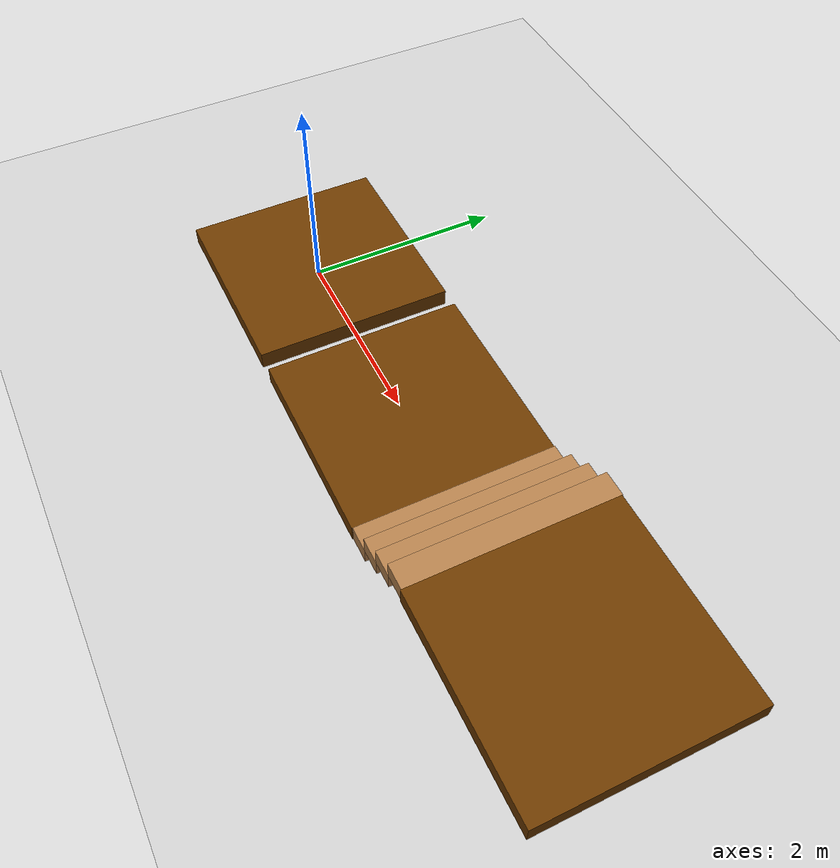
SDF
<?xml version="1.0" ?>
<sdf version="1.5">
    <world name="default">

        <physics type="ode">
        <max_step_size>0.001</max_step_size>
        <real_time_factor>1</real_time_factor>
        <real_time_update_rate>1000</real_time_update_rate>
        <gravity>0 0 -9.81</gravity>
            <ode>
                <solver>
                <type>quick</type>
                <iters>50</iters>
                <sor>1.3</sor>
                </solver>
                <constraints>
                <cfm>0.0</cfm>
                <erp>0.2</erp>
                <contact_max_correcting_vel>10.0</contact_max_correcting_vel>
                <contact_surface_layer>0.001</contact_surface_layer>
                </constraints>
            </ode>
        </physics>

        <scene>
        <sky>
            <clouds>
                <speed>12</speed>
            </clouds>
        </sky>
        </scene>
        <!-- A global light source -->
        <include>
            <uri>model://sun</uri>
        </include>
        <!-- A ground plane -->
        <include>
            <uri>model://ground_plane</uri>
        </include>
        <!-- environment blocks, obstacles or stairs -->
        <model name="static_environment">
        <static>true</static>
            <link name="floor">
                <pose>0 0 0.09 0 0 0</pose>
                <collision name="floor_collision">
                    <geometry>
                            <box>
                            <size>2 2 0.18</size>
                            </box>
                    </geometry>
                </collision>
                <visual name="floor_visual">
                    <geometry>
                        <box>
                            <size>2 2 0.18</size>
                        </box>
                    </geometry>
                    <material>
                        <ambient>0.2 0.2 0.2 1.0</ambient>
                        <diffuse>.421 0.225 0.0 1.0</diffuse>
                    </material>
                </visual>
            </link>

            <link name="floor2">
                <pose>2.2 0 0.09 0 0 0</pose>
                <collision name="floor2_collision">
                    <geometry>
                        <box>
                            <size>2 2 0.18</size>
                        </box>
                    </geometry>
                </collision>
                <visual name="floor2_visual">
                    <geometry>
                        <box>
                            <size>2 2 0.18</size>
                        </box>
                    </geometry>
                    <material>
                        <ambient>0.2 0.2 0.2 1.0</ambient>
                        <diffuse>.421 0.225 0.0 1.0</diffuse>
                    </material>
                </visual>
            </link>

            <link name="floor3">
                <pose>5.2 0 0.63 0 0 0</pose>
                <collision name="floor3_collision">
                    <geometry>
                        <box>
                            <size>2 2 0.18</size>
                        </box>
                    </geometry>
                </collision>
                <visual name="floor3_visual">
                    <geometry>
                        <box>
                            <size>2 2 0.18</size>
                        </box>
                    </geometry>
                    <material>
                        <ambient>0.2 0.2 0.2 1.0</ambient>
                        <diffuse>.421 0.225 0.0 1.0</diffuse>
                    </material>
                </visual>
            </link>
        </model>

        <include>
            <uri>model:///root/try/mobot/a1_ros2_simulation/a1_gazebo/worlds/building_editor_models/stairs</uri>
        </include>

        <plugin name="gazebo_ros_state" filename="libgazebo_ros_state.so">
            <ros>
                <namespace>/demo</namespace>
                <remap>model_states:=model_states_demo</remap>
            </ros>
                <update_rate>1.0</update_rate>
        </plugin>
    </world>
</sdf>

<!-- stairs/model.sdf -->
<sdf version='1.6'>
  <model name='stairs'>
    <pose frame=''>3.7 0.009 0 0 -0 0</pose>
    <link name='Stairs_1'>
      <visual name='Stairs_1_Visual_0'>
        <pose frame=''>-0.375 -0 0.09 0 -0 1.5708</pose>
        <geometry>
          <box>
            <size>2 0.25 0.18</size>
          </box>
        </geometry>
        <material>
          <script>
            <uri>file://media/materials/scripts/gazebo.material</uri>
            <name>Gazebo/Wood</name>
          </script>
          <ambient>1 1 1 1</ambient>
        </material>
        <meta>
          <layer>0</layer>
        </meta>
      </visual>
      <collision name='Stairs_1_Collision_0'>
        <geometry>
          <box>
            <size>2 0.25 0.18</size>
          </box>
        </geometry>
        <pose frame=''>-0.375 -0 0.09 0 -0 1.5708</pose>
      </collision>
      <visual name='Stairs_1_Visual_1'>
        <pose frame=''>-0.125 -0 0.27 0 -0 1.5708</pose>
        <geometry>
          <box>
            <size>2 0.25 0.18</size>
          </box>
        </geometry>
        <material>
          <script>
            <uri>file://media/materials/scripts/gazebo.material</uri>
            <name>Gazebo/Wood</name>
          </script>
          <ambient>1 1 1 1</ambient>
        </material>
        <meta>
          <layer>0</layer>
        </meta>
      </visual>
      <collision name='Stairs_1_Collision_1'>
        <geometry>
          <box>
            <size>2 0.25 0.18</size>
          </box>
        </geometry>
        <pose frame=''>-0.125 -0 0.27 0 -0 1.5708</pose>
      </collision>
      <visual name='Stairs_1_Visual_2'>
        <pose frame=''>0.125 0 0.45 0 -0 1.5708</pose>
        <geometry>
          <box>
            <size>2 0.25 0.18</size>
          </box>
        </geometry>
        <material>
          <script>
            <uri>file://media/materials/scripts/gazebo.material</uri>
            <name>Gazebo/Wood</name>
          </script>
          <ambient>1 1 1 1</ambient>
        </material>
        <meta>
          <layer>0</layer>
        </meta>
      </visual>
      <collision name='Stairs_1_Collision_2'>
        <geometry>
          <box>
            <size>2 0.25 0.18</size>
          </box>
        </geometry>
        <pose frame=''>0.125 0 0.45 0 -0 1.5708</pose>
      </collision>
      <visual name='Stairs_1_Visual_3'>
        <pose frame=''>0.375 0 0.63 0 -0 1.5708</pose>
        <geometry>
          <box>
            <size>2 0.25 0.18</size>
          </box>
        </geometry>
        <material>
          <script>
            <uri>file://media/materials/scripts/gazebo.material</uri>
            <name>Gazebo/Wood</name>
          </script>
          <ambient>1 1 1 1</ambient>
        </material>
        <meta>
          <layer>0</layer>
        </meta>
      </visual>
      <collision name='Stairs_1_Collision_3'>
        <geometry>
          <box>
            <size>2 0.25 0.18</size>
          </box>
        </geometry>
        <pose frame=''>0.375 0 0.63 0 -0 1.5708</pose>
      </collision>
    </link>
    <static>1</static>
    <plugin filename="libgazebo_ros_force.so" name="gazebo_ros_force">
        <ros>
            <namespace>/demo/world</namespace>
            <remap>gazebo_ros_force:=force_demo</remap>
        </ros>
        <link_name>Stairs_1</link_name>
        <force_frame>world</force_frame>
    </plugin>
  </model>
</sdf>
